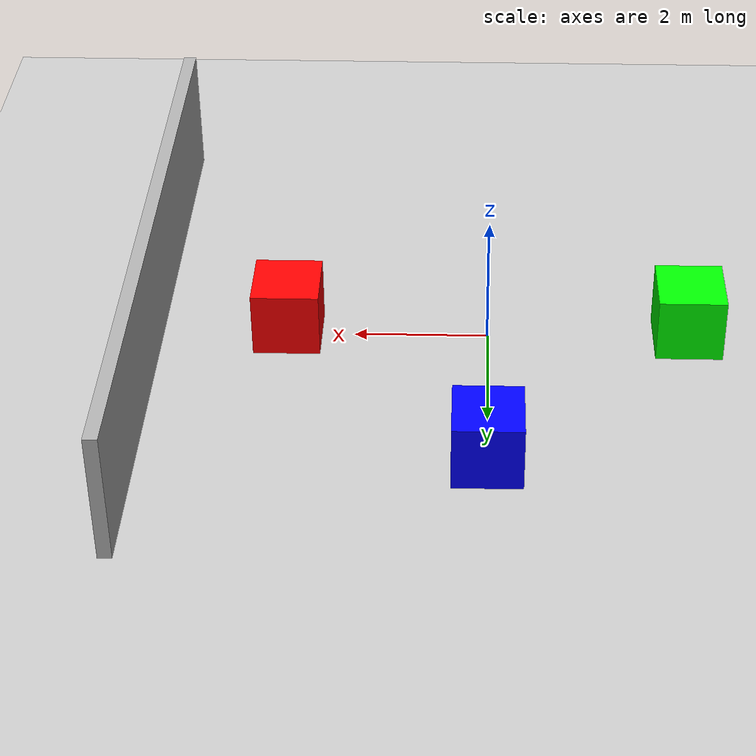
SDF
<?xml version="1.0" ?>
<sdf version="1.6">
  <world name="world_sensor">

    <include>
      <uri>model://sun</uri>
    </include>
    <include>
      <uri>model://ground_plane</uri>
    </include>

    <physics type="ode">
      <real_time_update_rate>1000.0</real_time_update_rate>
      <max_step_size>0.001</max_step_size>
    </physics>

    <!-- Kotak berwarna-warni sebagai target sensor kamera -->
    <model name="objek_merah">
      <pose>3 0 0.5 0 0 0</pose>
      <static>true</static>
      <link name="link">
        <collision name="collision">
          <geometry><box><size>1 1 1</size></box></geometry>
        </collision>
        <visual name="visual">
          <geometry><box><size>1 1 1</size></box></geometry>
          <material>
            <ambient>1 0 0 1</ambient>
            <diffuse>1 0 0 1</diffuse>
          </material>
        </visual>
      </link>
    </model>

    <model name="objek_biru">
      <pose>0 3 0.5 0 0 0</pose>
      <static>true</static>
      <link name="link">
        <collision name="collision">
          <geometry><box><size>1 1 1</size></box></geometry>
        </collision>
        <visual name="visual">
          <geometry><box><size>1 1 1</size></box></geometry>
          <material>
            <ambient>0 0 1 1</ambient>
            <diffuse>0 0 1 1</diffuse>
          </material>
        </visual>
      </link>
    </model>

    <model name="objek_hijau">
      <pose>-3 0 0.5 0 0 0</pose>
      <static>true</static>
      <link name="link">
        <collision name="collision">
          <geometry><box><size>1 1 1</size></box></geometry>
        </collision>
        <visual name="visual">
          <geometry><box><size>1 1 1</size></box></geometry>
          <material>
            <ambient>0 1 0 1</ambient>
            <diffuse>0 1 0 1</diffuse>
          </material>
        </visual>
      </link>
    </model>

    <!-- Dinding panjang sebagai target sensor LIDAR -->
    <model name="dinding_lidar">
      <pose>5 0 1 0 0 0</pose>
      <static>true</static>
      <link name="link">
        <collision name="collision">
          <geometry><box><size>0.2 10 2</size></box></geometry>
        </collision>
        <visual name="visual">
          <geometry><box><size>0.2 10 2</size></box></geometry>
          <material>
            <ambient>0.5 0.5 0.5 1</ambient>
            <diffuse>0.7 0.7 0.7 1</diffuse>
          </material>
        </visual>
      </link>
    </model>

    <gui fullscreen="0">
      <camera name="user_camera">
        <pose>6 -6 4 0 0.45 2.4</pose>
        <view_controller>orbit</view_controller>
      </camera>
    </gui>

  </world>
</sdf>
